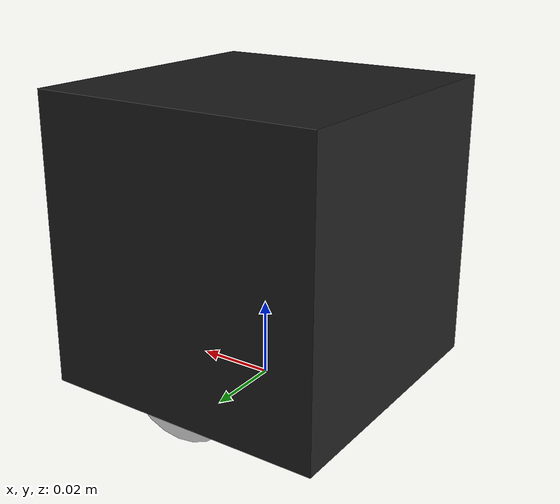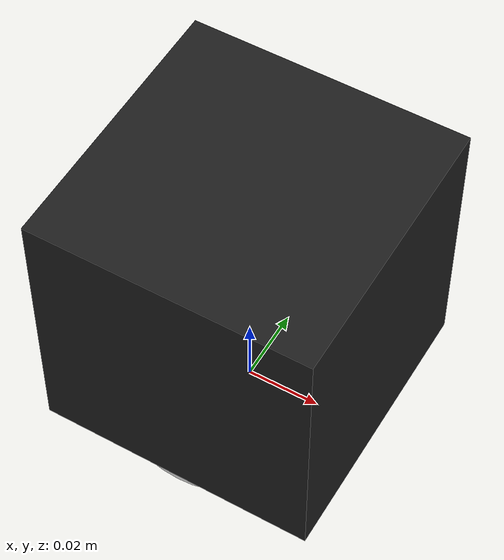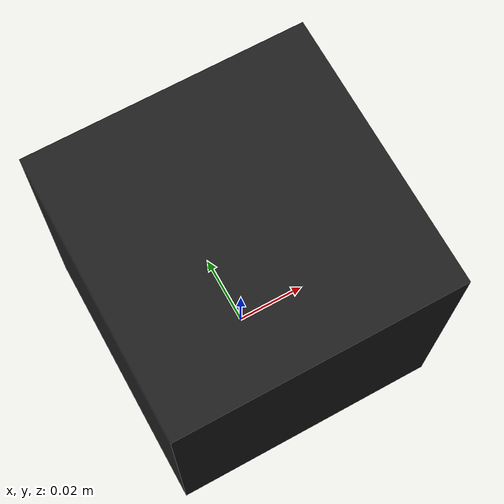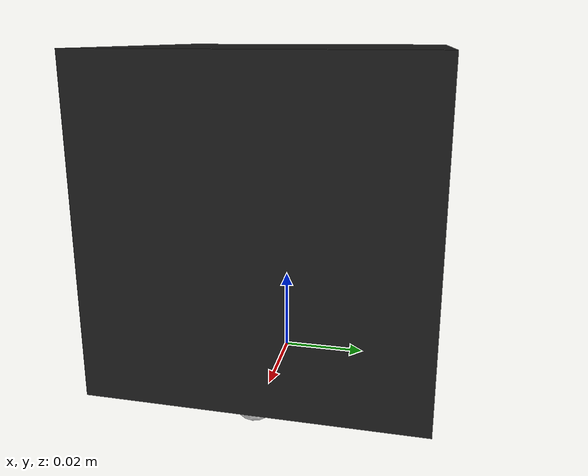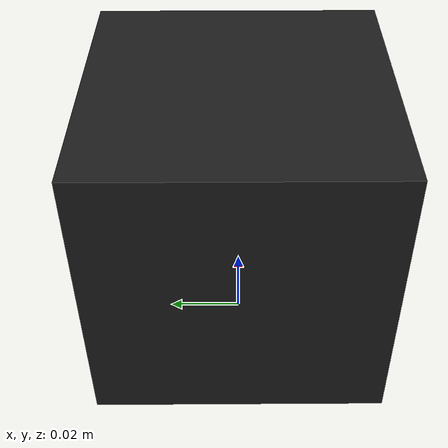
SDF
<?xml version='1.0'?>
<sdf version='1.6'>

  <model name='vsssoccer_robot'>

    <link name='base'>
      <inertial>
        <pose frame=''>0.001453 -0.000453 0.029787 0 0 0</pose> <!-- m m m rad rad rad -->
        <inertia>
          <ixx>0.0004219</ixx> <!-- kg.m² -->
          <iyy>0.0004219</iyy>
          <izz>0.0004219</izz>
          <ixy>0</ixy>
          <ixz>0</ixz>
          <iyz>0</iyz>
        </inertia>
        <mass>0.45</mass> <!-- kg -->
      </inertial>
      <pose frame=''>0 0 0 0 0 0</pose>
      <kinematic>0</kinematic>
      <gravity>1</gravity>

      <visual name='base_visual'>
        <pose frame=''>0 0 0.04 0 0 0</pose>
        <geometry>
          <box>
            <size>0.075 0.075 0.075</size>
          </box>
        </geometry>
        <material>
          <script>
            <uri>file://media/materials/scripts/gazebo.material</uri>
            <name>Gazebo/Black</name>
          </script>
        </material>
      </visual>
      <collision name='base_collision'>
        <pose frame=''>0 0 0.04 0 0 0</pose>
        <geometry>
          <box>
            <size>0.075 0.075 0.075</size>
          </box>
        </geometry>
        <surface>
          <friction>
            <ode>
              <mu>0.24</mu>
              <mu2>0.24</mu2>
            </ode>
          </friction>
          <contact>
            <ode>
              <kp>1e+13</kp>
              <kd>1</kd>
            </ode>
            <bullet>
              <kp>1e+13</kp>
              <kd>1</kd>
            </bullet>
          </contact>
        </surface>
      </collision>

      <visual name='rear_wheel_visual'>
        <pose frame=''>-0.0325 0 0.004 0 1.5707 1.5707</pose>
        <geometry>
          <sphere>
            <radius>0.005</radius>
          </sphere>
        </geometry>
        <material>
          <script>
            <uri>file://media/materials/scripts/gazebo.material</uri>
            <name>Gazebo/White</name>
          </script>
        </material>
      </visual>
      <collision name='rear_wheel_collision'>
        <pose frame=''>-0.0325 0 0.004 0 1.5707 1.5707</pose>
        <geometry>
          <sphere>
            <radius>0.005</radius>
          </sphere>
        </geometry>
        <surface>
          <friction>
            <ode>
              <mu>0.15</mu>
              <mu2>0.15</mu2>
              <fdir1>1 0 0</fdir1>
              <slip1>0</slip1>
              <slip2>0</slip2>
            </ode>
            <torsional>
              <coefficient>0.001</coefficient>
              <patch_radius>2</patch_radius>
              <surface_radius>0</surface_radius>
              <use_patch_radius>1</use_patch_radius>
              <ode>
                <slip>0</slip>
              </ode>
            </torsional>
          </friction>
          <bounce>
            <restitution_coefficient>0</restitution_coefficient>
            <threshold>1e+06</threshold>
          </bounce>
          <contact>
            <collide_without_contact>0</collide_without_contact>
            <collide_without_contact_bitmask>1</collide_without_contact_bitmask>
            <collide_bitmask>1</collide_bitmask>
            <ode>
              <soft_cfm>0</soft_cfm>
              <soft_erp>0.2</soft_erp>
              <kp>1e+13</kp>
              <kd>1</kd>
              <max_vel>0.01</max_vel>
              <min_depth>0.003</min_depth>
            </ode>
            <bullet>
              <split_impulse>1</split_impulse>
              <split_impulse_penetration_threshold>-0.01</split_impulse_penetration_threshold>
              <soft_cfm>0</soft_cfm>
              <soft_erp>0.2</soft_erp>
              <kp>1e+13</kp>
              <kd>1</kd>
            </bullet>
          </contact>
        </surface>
      </collision>

      <visual name='front_wheel_visual'>
        <pose frame=''>0.0325 0 0.004 0 1.5707 1.5707</pose>
        <geometry>
          <sphere>
            <radius>0.005</radius>
          </sphere>
        </geometry>
        <material>
          <script>
            <uri>file://media/materials/scripts/gazebo.material</uri>
            <name>Gazebo/White</name>
          </script>
        </material>
      </visual>
      <collision name='front_wheel_collision'>
        <pose frame=''>0.0325 0 0.004 0 1.5707 1.5707</pose>
        <geometry>
          <sphere>
            <radius>0.005</radius>
          </sphere>
        </geometry>
        <surface>
          <friction>
            <ode>
              <mu>0.15</mu>
              <mu2>0.15</mu2>
              <fdir1>1 0 0</fdir1>
              <slip1>0</slip1>
              <slip2>0</slip2>
            </ode>
            <torsional>
              <coefficient>0.001</coefficient>
              <patch_radius>2</patch_radius>
              <surface_radius>0</surface_radius>
              <use_patch_radius>1</use_patch_radius>
              <ode>
                <slip>0</slip>
              </ode>
            </torsional>
          </friction>
          <bounce>
            <restitution_coefficient>0</restitution_coefficient>
            <threshold>1e+06</threshold>
          </bounce>
          <contact>
            <collide_without_contact>0</collide_without_contact>
            <collide_without_contact_bitmask>1</collide_without_contact_bitmask>
            <collide_bitmask>1</collide_bitmask>
            <ode>
              <soft_cfm>0</soft_cfm>
              <soft_erp>0.2</soft_erp>
              <kp>1e+13</kp>
              <kd>1</kd>
              <max_vel>0.01</max_vel>
              <min_depth>0.003</min_depth>
            </ode>
            <bullet>
              <split_impulse>1</split_impulse>
              <split_impulse_penetration_threshold>-0.01</split_impulse_penetration_threshold>
              <soft_cfm>0</soft_cfm>
              <soft_erp>0.2</soft_erp>
              <kp>1e+13</kp>
              <kd>1</kd>
            </bullet>
          </contact>
        </surface>
      </collision>
    </link>

    <link name='left_wheel'>
      <pose frame=''>0 0.0345 0.015 0 0 0</pose>
      <inertial>
        <inertia>
          <ixx>0.000000365</ixx>
          <iyy>0.000000723</iyy>
          <izz>0.000000365</izz>
          <ixy>0</ixy>
          <ixz>0</ixz>
          <iyz>0</iyz>
        </inertia>
        <mass>0.005</mass>
        <pose frame=''>0 0 0 0 0 0</pose>
      </inertial>
      <kinematic>0</kinematic>
      <gravity>1</gravity>
      <visual name='visual'>
        <pose frame=''>0 0 0 0 1.5707 1.5707</pose>
        <geometry>
          <cylinder>
            <radius>0.017</radius>
            <length>0.003</length>
          </cylinder>
        </geometry>
        <material>
          <script>
            <uri>file://media/materials/scripts/gazebo.material</uri>
            <name>Gazebo/White</name>
          </script>
        </material>
      </visual>
      <collision name='collision'>
        <pose frame=''>0 0 0 0 1.5707 1.5707</pose>
        <geometry>
          <cylinder>
            <radius>0.017</radius>
            <length>0.003</length>
          </cylinder>
        </geometry>
        <surface>
          <friction>
            <ode>
              <mu>1</mu>
              <mu2>1</mu2>
              <fdir1>0 0 0</fdir1>
              <slip1>0</slip1>
              <slip2>0</slip2>
            </ode>
            <torsional>
              <coefficient>1</coefficient>
              <patch_radius>0</patch_radius>
              <surface_radius>0</surface_radius>
              <use_patch_radius>1</use_patch_radius>
              <ode>
                <slip>0</slip>
              </ode>
            </torsional>
          </friction>
          <bounce>
            <restitution_coefficient>0</restitution_coefficient>
            <threshold>1e+06</threshold>
          </bounce>
          <contact>
            <collide_without_contact>0</collide_without_contact>
            <collide_without_contact_bitmask>1</collide_without_contact_bitmask>
            <collide_bitmask>1</collide_bitmask>
            <ode>
              <soft_cfm>0</soft_cfm>
              <soft_erp>0.2</soft_erp>
              <kp>1e+13</kp>
              <kd>1</kd>
              <max_vel>0.01</max_vel>
              <min_depth>0.003</min_depth>
            </ode>
            <bullet>
              <split_impulse>1</split_impulse>
              <split_impulse_penetration_threshold>-0.01</split_impulse_penetration_threshold>
              <soft_cfm>0</soft_cfm>
              <soft_erp>0.2</soft_erp>
              <kp>1e+13</kp>
              <kd>1</kd>
            </bullet>
          </contact>
        </surface>

      </collision>
    </link>

    <link name='right_wheel'>
      <pose frame=''>0 -0.0345 0.015 0 0 0</pose>
      <inertial>
        <inertia>
          <ixx>0.000000365</ixx>
          <ixy>0</ixy>
          <ixz>0</ixz>
          <iyy>0.000000723</iyy>
          <iyz>0</iyz>
          <izz>0.000000365</izz>
        </inertia>
        <mass>0.005</mass>
        <pose frame=''>0 0 0 0 0 0</pose>
      </inertial>
      <kinematic>0</kinematic>
      <gravity>1</gravity>
      <visual name='visual'>
        <pose frame=''>0 0 0 0 1.5707 1.5707</pose>
        <geometry>
          <cylinder>
            <radius>0.017</radius>
            <length>0.003</length>
          </cylinder>
        </geometry>
        <material>
          <script>
            <uri>file://media/materials/scripts/gazebo.material</uri>
            <name>Gazebo/White</name>
          </script>
        </material>
      </visual>
      <collision name='collision'>
        <pose frame=''>0 0 0 0 1.5707 1.5707</pose>
        <geometry>
          <cylinder>
            <radius>0.017</radius>
            <length>0.003</length>
          </cylinder>
        </geometry>
        <surface>
          <friction>
            <ode>
              <mu>1</mu>
              <mu2>1</mu2>
              <fdir1>0 0 0</fdir1>
              <slip1>0</slip1>
              <slip2>0</slip2>
            </ode>
            <torsional>
              <coefficient>1</coefficient>
              <patch_radius>0</patch_radius>
              <surface_radius>0</surface_radius>
              <use_patch_radius>1</use_patch_radius>
              <ode>
                <slip>0</slip>
              </ode>
            </torsional>
          </friction>
          <bounce>
            <restitution_coefficient>0</restitution_coefficient>
            <threshold>1e+06</threshold>
          </bounce>
          <contact>
            <collide_without_contact>0</collide_without_contact>
            <collide_without_contact_bitmask>1</collide_without_contact_bitmask>
            <collide_bitmask>1</collide_bitmask>
            <ode>
              <soft_cfm>0</soft_cfm>
              <soft_erp>0.2</soft_erp>
              <kp>1e+13</kp>
              <kd>1</kd>
              <max_vel>0.01</max_vel>
              <min_depth>0.003</min_depth>
            </ode>
            <bullet>
              <split_impulse>1</split_impulse>
              <split_impulse_penetration_threshold>-0.01</split_impulse_penetration_threshold>
              <soft_cfm>0</soft_cfm>
              <soft_erp>0.2</soft_erp>
              <kp>1e+13</kp>
              <kd>1</kd>
            </bullet>
          </contact>
        </surface>

      </collision>
    </link>

    <joint name='left_wheel' type='revolute'>
      <parent>base</parent>
      <child>left_wheel</child>
      <pose frame=''>0 0 0 0 0 0</pose>
      <axis>
        <xyz>0 1 0</xyz>
        <use_parent_model_frame>0</use_parent_model_frame>
        <dynamics>
          <spring_reference>0</spring_reference>
          <spring_stiffness>0</spring_stiffness>
          <damping>0</damping>
          <friction>0</friction>
        </dynamics>
      </axis>
      <physics>
        <ode>
          <limit>
            <cfm>0</cfm>
            <erp>0.2</erp>
          </limit>
          <suspension>
            <cfm>0</cfm>
            <erp>0.2</erp>
          </suspension>
        </ode>
      </physics>
    </joint>

    <joint name='right_wheel' type='revolute'>
      <parent>base</parent>
      <child>right_wheel</child>
      <pose frame=''>0 0 0 0 0 0</pose>
      <axis>
        <xyz>0 1 0</xyz>
        <use_parent_model_frame>0</use_parent_model_frame>
        <dynamics>
          <spring_reference>0</spring_reference>
          <spring_stiffness>0</spring_stiffness>
          <damping>0</damping>
          <friction>0</friction>
        </dynamics>
      </axis>
      <physics>
        <ode>
          <limit>
            <cfm>0</cfm>
            <erp>0.2</erp>
          </limit>
          <suspension>
            <cfm>0</cfm>
            <erp>0.2</erp>
          </suspension>
        </ode>
      </physics>
    </joint>

    <plugin name='differential_drive_controller' filename='libgazebo_ros_diff_drive.so'>
      <alwaysOn>true</alwaysOn>
      <updateRate>33</updateRate>
      <leftJoint>left_wheel</leftJoint>
      <rightJoint>right_wheel</rightJoint>
      <wheelSeparation>0.069</wheelSeparation>
      <wheelDiameter>0.034</wheelDiameter>
      <torque>0.019862</torque>
      <commandTopic>cmd_vel_guest2</commandTopic>
      <odometryTopic>odom</odometryTopic>
      <odometryFrame>odom</odometryFrame>
      <robotBaseFrame>base</robotBaseFrame>
    </plugin>

  </model>
</sdf>
